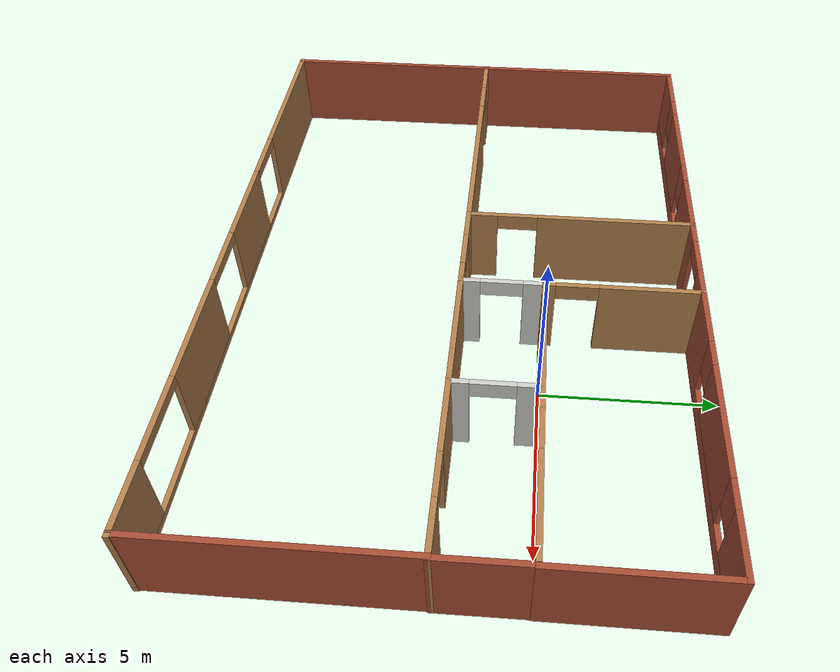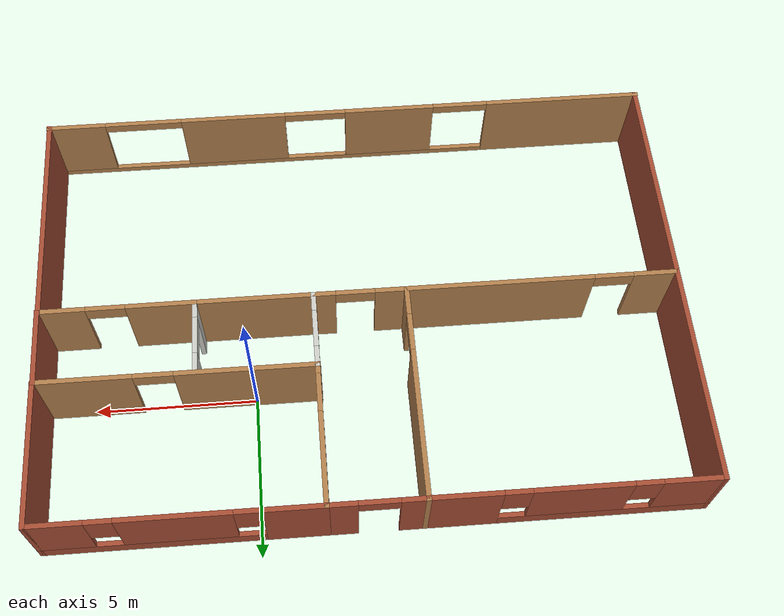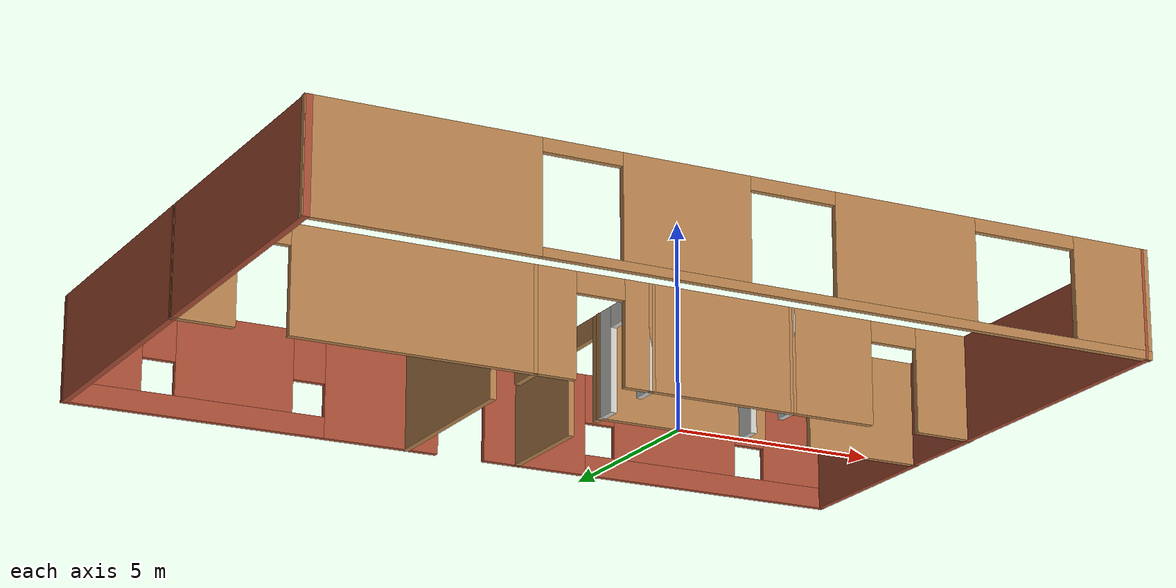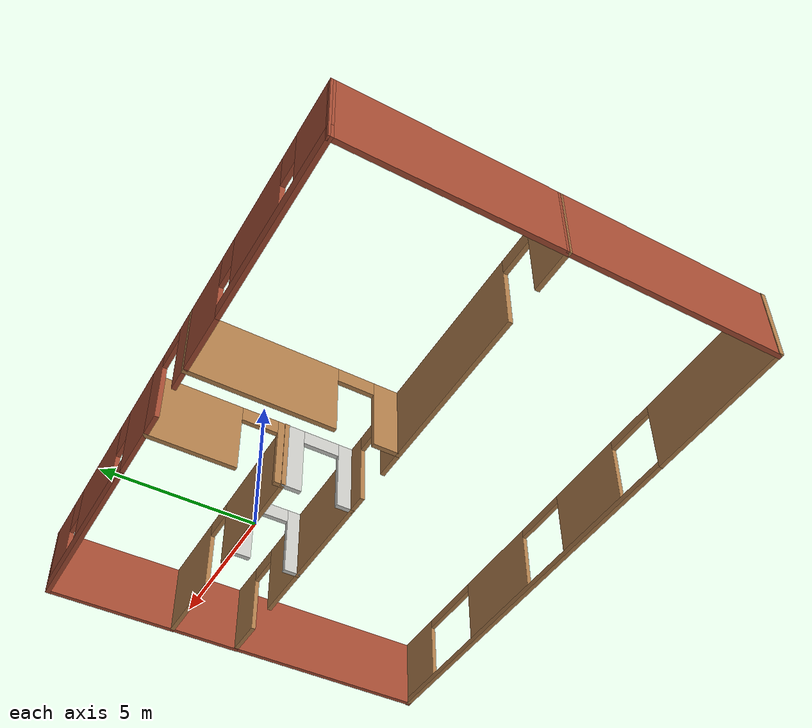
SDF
<?xml version='1.0'?>
<sdf version='1.6'>
  <model name='office'>
    <pose frame=''>-3.38204 -2.41716 0 0 -0 0</pose>
    <link name='Wall_0'>
      <pose frame=''>0.00123 6.80703 0 0 -0 0</pose>
      <visual name='Wall_0_Visual_0'>
        <pose frame=''>-1.07927 0 1.25 0 -0 0</pose>
        <geometry>
          <box>
            <size>0.841459 0.15 2.5</size>
          </box>
        </geometry>
        <material>
          <script>
            <uri>file://media/materials/scripts/gazebo.material</uri>
            <name>Gazebo/Bricks</name>
          </script>
          <ambient>1 1 1 1</ambient>
        </material>
        <meta>
          <layer>0</layer>
        </meta>
      </visual>
      <collision name='Wall_0_Collision_0'>
        <geometry>
          <box>
            <size>0.841459 0.15 2.5</size>
          </box>
        </geometry>
        <pose frame=''>-1.07927 0 1.25 0 -0 0</pose>
      </collision>
      <visual name='Wall_0_Visual_1'>
        <pose frame=''>1.02073 0 1.25 0 -0 0</pose>
        <geometry>
          <box>
            <size>0.958541 0.15 2.5</size>
          </box>
        </geometry>
        <material>
          <script>
            <uri>file://media/materials/scripts/gazebo.material</uri>
            <name>Gazebo/Bricks</name>
          </script>
          <ambient>1 1 1 1</ambient>
        </material>
        <meta>
          <layer>0</layer>
        </meta>
      </visual>
      <collision name='Wall_0_Collision_1'>
        <geometry>
          <box>
            <size>0.958541 0.15 2.5</size>
          </box>
        </geometry>
        <pose frame=''>1.02073 0 1.25 0 -0 0</pose>
      </collision>
      <visual name='Wall_0_Visual_2'>
        <pose frame=''>-0.058541 0 2.25 0 -0 0</pose>
        <geometry>
          <box>
            <size>1.2 0.15 0.5</size>
          </box>
        </geometry>
        <material>
          <script>
            <uri>file://media/materials/scripts/gazebo.material</uri>
            <name>Gazebo/Bricks</name>
          </script>
          <ambient>1 1 1 1</ambient>
        </material>
        <meta>
          <layer>0</layer>
        </meta>
      </visual>
      <collision name='Wall_0_Collision_2'>
        <geometry>
          <box>
            <size>1.2 0.15 0.5</size>
          </box>
        </geometry>
        <pose frame=''>-0.058541 0 2.25 0 -0 0</pose>
      </collision>
    </link>
    <link name='Wall_1'>
      <pose frame=''>1.42623 4.63203 0 0 0 -1.5708</pose>
      <visual name='Wall_1_Visual_0'>
        <pose frame=''>-0.787008 0 1.25 0 -0 0</pose>
        <geometry>
          <box>
            <size>2.92598 0.15 2.5</size>
          </box>
        </geometry>
        <material>
          <script>
            <uri>file://media/materials/scripts/gazebo.material</uri>
            <name>Gazebo/Wood</name>
          </script>
          <ambient>1 1 1 1</ambient>
        </material>
        <meta>
          <layer>0</layer>
        </meta>
      </visual>
      <collision name='Wall_1_Collision_0'>
        <geometry>
          <box>
            <size>2.92598 0.15 2.5</size>
          </box>
        </geometry>
        <pose frame=''>-0.787008 0 1.25 0 -0 0</pose>
      </collision>
      <visual name='Wall_1_Visual_1'>
        <pose frame=''>2.06299 0 1.25 0 -0 0</pose>
        <geometry>
          <box>
            <size>0.374017 0.15 2.5</size>
          </box>
        </geometry>
        <material>
          <script>
            <uri>file://media/materials/scripts/gazebo.material</uri>
            <name>Gazebo/Wood</name>
          </script>
          <ambient>1 1 1 1</ambient>
        </material>
        <meta>
          <layer>0</layer>
        </meta>
      </visual>
      <collision name='Wall_1_Collision_1'>
        <geometry>
          <box>
            <size>0.374017 0.15 2.5</size>
          </box>
        </geometry>
        <pose frame=''>2.06299 0 1.25 0 -0 0</pose>
      </collision>
      <visual name='Wall_1_Visual_2'>
        <pose frame=''>1.27598 0 2.25 0 -0 0</pose>
        <geometry>
          <box>
            <size>1.2 0.15 0.5</size>
          </box>
        </geometry>
        <material>
          <script>
            <uri>file://media/materials/scripts/gazebo.material</uri>
            <name>Gazebo/Wood</name>
          </script>
          <ambient>1 1 1 1</ambient>
        </material>
        <meta>
          <layer>0</layer>
        </meta>
      </visual>
      <collision name='Wall_1_Collision_2'>
        <geometry>
          <box>
            <size>1.2 0.15 0.5</size>
          </box>
        </geometry>
        <pose frame=''>1.27598 0 2.25 0 -0 0</pose>
      </collision>
    </link>
    <link name='Wall_10'>
      <pose frame=''>5.02623 1.28203 0 0 -0 1.5708</pose>
      <visual name='Wall_10_Visual_0'>
        <pose frame=''>-0.954209 0 1.25 0 -0 0</pose>
        <geometry>
          <box>
            <size>0.591582 0.15 2.5</size>
          </box>
        </geometry>
        <material>
          <script>
            <uri>file://media/materials/scripts/gazebo.material</uri>
            <name>Gazebo/CeilingTiled</name>
          </script>
          <ambient>1 1 1 1</ambient>
        </material>
        <meta>
          <layer>0</layer>
        </meta>
      </visual>
      <collision name='Wall_10_Collision_0'>
        <geometry>
          <box>
            <size>0.591582 0.15 2.5</size>
          </box>
        </geometry>
        <pose frame=''>-0.954209 0 1.25 0 -0 0</pose>
      </collision>
      <visual name='Wall_10_Visual_1'>
        <pose frame=''>0.895791 0 1.25 0 -0 0</pose>
        <geometry>
          <box>
            <size>0.708418 0.15 2.5</size>
          </box>
        </geometry>
        <material>
          <script>
            <uri>file://media/materials/scripts/gazebo.material</uri>
            <name>Gazebo/CeilingTiled</name>
          </script>
          <ambient>1 1 1 1</ambient>
        </material>
        <meta>
          <layer>0</layer>
        </meta>
      </visual>
      <collision name='Wall_10_Collision_1'>
        <geometry>
          <box>
            <size>0.708418 0.15 2.5</size>
          </box>
        </geometry>
        <pose frame=''>0.895791 0 1.25 0 -0 0</pose>
      </collision>
      <visual name='Wall_10_Visual_2'>
        <pose frame=''>-0.058418 0 2.25 0 -0 0</pose>
        <geometry>
          <box>
            <size>1.2 0.15 0.5</size>
          </box>
        </geometry>
        <material>
          <script>
            <uri>file://media/materials/scripts/gazebo.material</uri>
            <name>Gazebo/CeilingTiled</name>
          </script>
          <ambient>1 1 1 1</ambient>
        </material>
        <meta>
          <layer>0</layer>
        </meta>
      </visual>
      <collision name='Wall_10_Collision_2'>
        <geometry>
          <box>
            <size>1.2 0.15 0.5</size>
          </box>
        </geometry>
        <pose frame=''>-0.058418 0 2.25 0 -0 0</pose>
      </collision>
    </link>
    <link name='Wall_14'>
      <pose frame=''>-1.42237 3.45929 0 0 0 -1.57038</pose>
      <visual name='Wall_14_Visual_0'>
        <pose frame=''>-1.07421 0 1.25 0 -0 0</pose>
        <geometry>
          <box>
            <size>4.69716 0.15 2.5</size>
          </box>
        </geometry>
        <material>
          <script>
            <uri>file://media/materials/scripts/gazebo.material</uri>
            <name>Gazebo/Wood</name>
          </script>
          <ambient>1 1 1 1</ambient>
        </material>
        <meta>
          <layer>0</layer>
        </meta>
      </visual>
      <collision name='Wall_14_Collision_0'>
        <geometry>
          <box>
            <size>4.69716 0.15 2.5</size>
          </box>
        </geometry>
        <pose frame=''>-1.07421 0 1.25 0 -0 0</pose>
      </collision>
      <visual name='Wall_14_Visual_1'>
        <pose frame=''>2.94858 0 1.25 0 -0 0</pose>
        <geometry>
          <box>
            <size>0.94843 0.15 2.5</size>
          </box>
        </geometry>
        <material>
          <script>
            <uri>file://media/materials/scripts/gazebo.material</uri>
            <name>Gazebo/Wood</name>
          </script>
          <ambient>1 1 1 1</ambient>
        </material>
        <meta>
          <layer>0</layer>
        </meta>
      </visual>
      <collision name='Wall_14_Collision_1'>
        <geometry>
          <box>
            <size>0.94843 0.15 2.5</size>
          </box>
        </geometry>
        <pose frame=''>2.94858 0 1.25 0 -0 0</pose>
      </collision>
      <visual name='Wall_14_Visual_2'>
        <pose frame=''>1.87437 0 2.25 0 -0 0</pose>
        <geometry>
          <box>
            <size>1.2 0.15 0.5</size>
          </box>
        </geometry>
        <material>
          <script>
            <uri>file://media/materials/scripts/gazebo.material</uri>
            <name>Gazebo/Wood</name>
          </script>
          <ambient>1 1 1 1</ambient>
        </material>
        <meta>
          <layer>0</layer>
        </meta>
      </visual>
      <collision name='Wall_14_Collision_2'>
        <geometry>
          <box>
            <size>1.2 0.15 0.5</size>
          </box>
        </geometry>
        <pose frame=''>1.87437 0 2.25 0 -0 0</pose>
      </collision>
    </link>
    <link name='Wall_15'>
      <pose frame=''>0.002634 0.109288 0 0 0 -0.001586</pose>
      <visual name='Wall_15_Visual_0'>
        <pose frame=''>-0.976905 0 1.25 0 -0 0</pose>
        <geometry>
          <box>
            <size>1.04339 0.15 2.5</size>
          </box>
        </geometry>
        <material>
          <script>
            <uri>file://media/materials/scripts/gazebo.material</uri>
            <name>Gazebo/Wood</name>
          </script>
          <ambient>1 1 1 1</ambient>
        </material>
        <meta>
          <layer>0</layer>
        </meta>
      </visual>
      <collision name='Wall_15_Collision_0'>
        <geometry>
          <box>
            <size>1.04339 0.15 2.5</size>
          </box>
        </geometry>
        <pose frame=''>-0.976905 0 1.25 0 -0 0</pose>
      </collision>
      <visual name='Wall_15_Visual_1'>
        <pose frame=''>1.12169 0 1.25 0 -0 0</pose>
        <geometry>
          <box>
            <size>0.753809 0.15 2.5</size>
          </box>
        </geometry>
        <material>
          <script>
            <uri>file://media/materials/scripts/gazebo.material</uri>
            <name>Gazebo/Wood</name>
          </script>
          <ambient>1 1 1 1</ambient>
        </material>
        <meta>
          <layer>0</layer>
        </meta>
      </visual>
      <collision name='Wall_15_Collision_1'>
        <geometry>
          <box>
            <size>0.753809 0.15 2.5</size>
          </box>
        </geometry>
        <pose frame=''>1.12169 0 1.25 0 -0 0</pose>
      </collision>
      <visual name='Wall_15_Visual_2'>
        <pose frame=''>0.144788 0 2.25 0 -0 0</pose>
        <geometry>
          <box>
            <size>1.2 0.15 0.5</size>
          </box>
        </geometry>
        <material>
          <script>
            <uri>file://media/materials/scripts/gazebo.material</uri>
            <name>Gazebo/Wood</name>
          </script>
          <ambient>1 1 1 1</ambient>
        </material>
        <meta>
          <layer>0</layer>
        </meta>
      </visual>
      <collision name='Wall_15_Collision_2'>
        <geometry>
          <box>
            <size>1.2 0.15 0.5</size>
          </box>
        </geometry>
        <pose frame=''>0.144788 0 2.25 0 -0 0</pose>
      </collision>
    </link>
    <link name='Wall_17'>
      <pose frame=''>-5.59877 6.80703 0 0 -0 3.14159</pose>
      <visual name='Wall_17_Visual_0'>
        <pose frame=''>-3.15253 0 1.25 0 -0 0</pose>
        <geometry>
          <box>
            <size>2.19494 0.15 2.5</size>
          </box>
        </geometry>
        <material>
          <script>
            <uri>file://media/materials/scripts/gazebo.material</uri>
            <name>Gazebo/Bricks</name>
          </script>
          <ambient>1 1 1 1</ambient>
        </material>
        <meta>
          <layer>0</layer>
        </meta>
      </visual>
      <collision name='Wall_17_Collision_0'>
        <geometry>
          <box>
            <size>2.19494 0.15 2.5</size>
          </box>
        </geometry>
        <pose frame=''>-3.15253 0 1.25 0 -0 0</pose>
      </collision>
      <visual name='Wall_17_Visual_1'>
        <pose frame=''>1.09747 0 0.25 0 -0 0</pose>
        <geometry>
          <box>
            <size>6.30506 0.15 0.5</size>
          </box>
        </geometry>
        <material>
          <script>
            <uri>file://media/materials/scripts/gazebo.material</uri>
            <name>Gazebo/Bricks</name>
          </script>
          <ambient>1 1 1 1</ambient>
        </material>
        <meta>
          <layer>0</layer>
        </meta>
      </visual>
      <collision name='Wall_17_Collision_1'>
        <geometry>
          <box>
            <size>6.30506 0.15 0.5</size>
          </box>
        </geometry>
        <pose frame=''>1.09747 0 0.25 0 -0 0</pose>
      </collision>
      <visual name='Wall_17_Visual_2'>
        <pose frame=''>0.184146 0 1.5 0 -0 0</pose>
        <geometry>
          <box>
            <size>2.8784 0.15 2</size>
          </box>
        </geometry>
        <material>
          <script>
            <uri>file://media/materials/scripts/gazebo.material</uri>
            <name>Gazebo/Bricks</name>
          </script>
          <ambient>1 1 1 1</ambient>
        </material>
        <meta>
          <layer>0</layer>
        </meta>
      </visual>
      <collision name='Wall_17_Collision_2'>
        <geometry>
          <box>
            <size>2.8784 0.15 2</size>
          </box>
        </geometry>
        <pose frame=''>0.184146 0 1.5 0 -0 0</pose>
      </collision>
      <visual name='Wall_17_Visual_3'>
        <pose frame=''>3.33667 0 1.5 0 -0 0</pose>
        <geometry>
          <box>
            <size>1.82665 0.15 2</size>
          </box>
        </geometry>
        <material>
          <script>
            <uri>file://media/materials/scripts/gazebo.material</uri>
            <name>Gazebo/Bricks</name>
          </script>
          <ambient>1 1 1 1</ambient>
        </material>
        <meta>
          <layer>0</layer>
        </meta>
      </visual>
      <collision name='Wall_17_Collision_3'>
        <geometry>
          <box>
            <size>1.82665 0.15 2</size>
          </box>
        </geometry>
        <pose frame=''>3.33667 0 1.5 0 -0 0</pose>
      </collision>
      <visual name='Wall_17_Visual_4'>
        <pose frame=''>-1.65506 0 1.9 0 -0 0</pose>
        <geometry>
          <box>
            <size>0.8 0.15 1.2</size>
          </box>
        </geometry>
        <material>
          <script>
            <uri>file://media/materials/scripts/gazebo.material</uri>
            <name>Gazebo/Bricks</name>
          </script>
          <ambient>1 1 1 1</ambient>
        </material>
        <meta>
          <layer>0</layer>
        </meta>
      </visual>
      <collision name='Wall_17_Collision_4'>
        <geometry>
          <box>
            <size>0.8 0.15 1.2</size>
          </box>
        </geometry>
        <pose frame=''>-1.65506 0 1.9 0 -0 0</pose>
      </collision>
      <visual name='Wall_17_Visual_5'>
        <pose frame=''>2.02335 0 1.9 0 -0 0</pose>
        <geometry>
          <box>
            <size>0.8 0.15 1.2</size>
          </box>
        </geometry>
        <material>
          <script>
            <uri>file://media/materials/scripts/gazebo.material</uri>
            <name>Gazebo/Bricks</name>
          </script>
          <ambient>1 1 1 1</ambient>
        </material>
        <meta>
          <layer>0</layer>
        </meta>
      </visual>
      <collision name='Wall_17_Collision_5'>
        <geometry>
          <box>
            <size>0.8 0.15 1.2</size>
          </box>
        </geometry>
        <pose frame=''>2.02335 0 1.9 0 -0 0</pose>
      </collision>
    </link>
    <link name='Wall_18'>
      <collision name='Wall_18_Collision'>
        <geometry>
          <box>
            <size>6.84549 0.15 2.5</size>
          </box>
        </geometry>
        <pose frame=''>0 0 1.25 0 -0 0</pose>
      </collision>
      <visual name='Wall_18_Visual'>
        <pose frame=''>0 0 1.25 0 -0 0</pose>
        <geometry>
          <box>
            <size>6.84549 0.15 2.5</size>
          </box>
        </geometry>
        <material>
          <script>
            <uri>file://media/materials/scripts/gazebo.material</uri>
            <name>Gazebo/Bricks</name>
          </script>
          <ambient>1 1 1 1</ambient>
        </material>
        <meta>
          <layer>0</layer>
        </meta>
      </visual>
      <pose frame=''>-9.77237 3.45929 0 0 0 -1.57038</pose>
    </link>
    <link name='Wall_19'>
      <pose frame=''>-5.59596 0.111546 0 0 -0 0</pose>
      <visual name='Wall_19_Visual_0'>
        <pose frame=''>-3.53632 0 1.25 0 -0 0</pose>
        <geometry>
          <box>
            <size>1.42737 0.15 2.5</size>
          </box>
        </geometry>
        <material>
          <script>
            <uri>file://media/materials/scripts/gazebo.material</uri>
            <name>Gazebo/Wood</name>
          </script>
          <ambient>1 1 1 1</ambient>
        </material>
        <meta>
          <layer>0</layer>
        </meta>
      </visual>
      <collision name='Wall_19_Collision_0'>
        <geometry>
          <box>
            <size>1.42737 0.15 2.5</size>
          </box>
        </geometry>
        <pose frame=''>-3.53632 0 1.25 0 -0 0</pose>
      </collision>
      <visual name='Wall_19_Visual_1'>
        <pose frame=''>1.31368 0 1.25 0 -0 0</pose>
        <geometry>
          <box>
            <size>5.87263 0.15 2.5</size>
          </box>
        </geometry>
        <material>
          <script>
            <uri>file://media/materials/scripts/gazebo.material</uri>
            <name>Gazebo/Wood</name>
          </script>
          <ambient>1 1 1 1</ambient>
        </material>
        <meta>
          <layer>0</layer>
        </meta>
      </visual>
      <collision name='Wall_19_Collision_1'>
        <geometry>
          <box>
            <size>5.87263 0.15 2.5</size>
          </box>
        </geometry>
        <pose frame=''>1.31368 0 1.25 0 -0 0</pose>
      </collision>
      <visual name='Wall_19_Visual_2'>
        <pose frame=''>-2.22263 0 2.25 0 -0 0</pose>
        <geometry>
          <box>
            <size>1.2 0.15 0.5</size>
          </box>
        </geometry>
        <material>
          <script>
            <uri>file://media/materials/scripts/gazebo.material</uri>
            <name>Gazebo/Wood</name>
          </script>
          <ambient>1 1 1 1</ambient>
        </material>
        <meta>
          <layer>0</layer>
        </meta>
      </visual>
      <collision name='Wall_19_Collision_2'>
        <geometry>
          <box>
            <size>1.2 0.15 0.5</size>
          </box>
        </geometry>
        <pose frame=''>-2.22263 0 2.25 0 -0 0</pose>
      </collision>
    </link>
    <link name='Wall_21'>
      <collision name='Wall_21_Collision'>
        <geometry>
          <box>
            <size>7.06897 0.15 2.5</size>
          </box>
        </geometry>
        <pose frame=''>0 0 1.25 0 -0 0</pose>
      </collision>
      <visual name='Wall_21_Visual'>
        <pose frame=''>0 0 1.25 0 -0 0</pose>
        <geometry>
          <box>
            <size>7.06897 0.15 2.5</size>
          </box>
        </geometry>
        <material>
          <script>
            <uri>file://media/materials/scripts/gazebo.material</uri>
            <name>Gazebo/Bricks</name>
          </script>
          <ambient>1 1 1 1</ambient>
        </material>
        <meta>
          <layer>0</layer>
        </meta>
      </visual>
      <pose frame=''>-9.76503 -3.34751 0 0 0 -1.56908</pose>
    </link>
    <link name='Wall_22'>
      <pose frame=''>0 -6.80657 0 0 -0 0</pose>
      <visual name='Wall_22_Visual_0'>
        <pose frame=''>-7.30329 0 1.25 0 -0 0</pose>
        <geometry>
          <box>
            <size>5.11 0.15 2.5</size>
          </box>
        </geometry>
        <material>
          <script>
            <uri>file://media/materials/scripts/gazebo.material</uri>
            <name>Gazebo/Wood</name>
          </script>
          <ambient>1 1 1 1</ambient>
        </material>
        <meta>
          <layer>0</layer>
        </meta>
      </visual>
      <collision name='Wall_22_Collision_0'>
        <geometry>
          <box>
            <size>5.11 0.15 2.5</size>
          </box>
        </geometry>
        <pose frame=''>-7.30329 0 1.25 0 -0 0</pose>
      </collision>
      <visual name='Wall_22_Visual_1'>
        <pose frame=''>2.555 0 0.1 0 -0 0</pose>
        <geometry>
          <box>
            <size>14.6066 0.15 0.2</size>
          </box>
        </geometry>
        <material>
          <script>
            <uri>file://media/materials/scripts/gazebo.material</uri>
            <name>Gazebo/Wood</name>
          </script>
          <ambient>1 1 1 1</ambient>
        </material>
        <meta>
          <layer>0</layer>
        </meta>
      </visual>
      <collision name='Wall_22_Collision_1'>
        <geometry>
          <box>
            <size>14.6066 0.15 0.2</size>
          </box>
        </geometry>
        <pose frame=''>2.555 0 0.1 0 -0 0</pose>
      </collision>
      <visual name='Wall_22_Visual_2'>
        <pose frame=''>-1.47869 0 1.35 0 -0 0</pose>
        <geometry>
          <box>
            <size>2.93921 0.15 2.3</size>
          </box>
        </geometry>
        <material>
          <script>
            <uri>file://media/materials/scripts/gazebo.material</uri>
            <name>Gazebo/Wood</name>
          </script>
          <ambient>1 1 1 1</ambient>
        </material>
        <meta>
          <layer>0</layer>
        </meta>
      </visual>
      <collision name='Wall_22_Collision_2'>
        <geometry>
          <box>
            <size>2.93921 0.15 2.3</size>
          </box>
        </geometry>
        <pose frame=''>-1.47869 0 1.35 0 -0 0</pose>
      </collision>
      <visual name='Wall_22_Visual_3'>
        <pose frame=''>3.70769 0 1.35 0 -0 0</pose>
        <geometry>
          <box>
            <size>3.43355 0.15 2.3</size>
          </box>
        </geometry>
        <material>
          <script>
            <uri>file://media/materials/scripts/gazebo.material</uri>
            <name>Gazebo/Wood</name>
          </script>
          <ambient>1 1 1 1</ambient>
        </material>
        <meta>
          <layer>0</layer>
        </meta>
      </visual>
      <collision name='Wall_22_Collision_3'>
        <geometry>
          <box>
            <size>3.43355 0.15 2.3</size>
          </box>
        </geometry>
        <pose frame=''>3.70769 0 1.35 0 -0 0</pose>
      </collision>
      <visual name='Wall_22_Visual_4'>
        <pose frame=''>8.89138 0 1.35 0 -0 0</pose>
        <geometry>
          <box>
            <size>1.93382 0.15 2.3</size>
          </box>
        </geometry>
        <material>
          <script>
            <uri>file://media/materials/scripts/gazebo.material</uri>
            <name>Gazebo/Wood</name>
          </script>
          <ambient>1 1 1 1</ambient>
        </material>
        <meta>
          <layer>0</layer>
        </meta>
      </visual>
      <collision name='Wall_22_Collision_4'>
        <geometry>
          <box>
            <size>1.93382 0.15 2.3</size>
          </box>
        </geometry>
        <pose frame=''>8.89138 0 1.35 0 -0 0</pose>
      </collision>
      <visual name='Wall_22_Visual_5'>
        <pose frame=''>-3.84829 0 2.35 0 -0 0</pose>
        <geometry>
          <box>
            <size>1.8 0.15 0.3</size>
          </box>
        </geometry>
        <material>
          <script>
            <uri>file://media/materials/scripts/gazebo.material</uri>
            <name>Gazebo/Wood</name>
          </script>
          <ambient>1 1 1 1</ambient>
        </material>
        <meta>
          <layer>0</layer>
        </meta>
      </visual>
      <collision name='Wall_22_Collision_5'>
        <geometry>
          <box>
            <size>1.8 0.15 0.3</size>
          </box>
        </geometry>
        <pose frame=''>-3.84829 0 2.35 0 -0 0</pose>
      </collision>
      <visual name='Wall_22_Visual_6'>
        <pose frame=''>0.990915 0 2.35 0 -0 0</pose>
        <geometry>
          <box>
            <size>2 0.15 0.3</size>
          </box>
        </geometry>
        <material>
          <script>
            <uri>file://media/materials/scripts/gazebo.material</uri>
            <name>Gazebo/Wood</name>
          </script>
          <ambient>1 1 1 1</ambient>
        </material>
        <meta>
          <layer>0</layer>
        </meta>
      </visual>
      <collision name='Wall_22_Collision_6'>
        <geometry>
          <box>
            <size>2 0.15 0.3</size>
          </box>
        </geometry>
        <pose frame=''>0.990915 0 2.35 0 -0 0</pose>
      </collision>
      <visual name='Wall_22_Visual_7'>
        <pose frame=''>6.67447 0 2.35 0 -0 0</pose>
        <geometry>
          <box>
            <size>2.5 0.15 0.3</size>
          </box>
        </geometry>
        <material>
          <script>
            <uri>file://media/materials/scripts/gazebo.material</uri>
            <name>Gazebo/Wood</name>
          </script>
          <ambient>1 1 1 1</ambient>
        </material>
        <meta>
          <layer>0</layer>
        </meta>
      </visual>
      <collision name='Wall_22_Collision_7'>
        <geometry>
          <box>
            <size>2.5 0.15 0.3</size>
          </box>
        </geometry>
        <pose frame=''>6.67447 0 2.35 0 -0 0</pose>
      </collision>
    </link>
    <link name='Wall_23'>
      <collision name='Wall_23_Collision'>
        <geometry>
          <box>
            <size>7.06812 0.15 2.5</size>
          </box>
        </geometry>
        <pose frame=''>0 0 1.25 0 -0 0</pose>
      </collision>
      <visual name='Wall_23_Visual'>
        <pose frame=''>0 0 1.25 0 -0 0</pose>
        <geometry>
          <box>
            <size>7.06812 0.15 2.5</size>
          </box>
        </geometry>
        <material>
          <script>
            <uri>file://media/materials/scripts/gazebo.material</uri>
            <name>Gazebo/Bricks</name>
          </script>
          <ambient>1 1 1 1</ambient>
        </material>
        <meta>
          <layer>0</layer>
        </meta>
      </visual>
      <pose frame=''>9.75331 -3.34751 0 0 -0 1.57251</pose>
    </link>
    <link name='Wall_24'>
      <pose frame=''>7.39883 0.109288 0 0 0 -3.14064</pose>
      <visual name='Wall_24_Visual_0'>
        <pose frame=''>-1.68708 0 1.25 0 -0 0</pose>
        <geometry>
          <box>
            <size>1.52105 0.15 2.5</size>
          </box>
        </geometry>
        <material>
          <script>
            <uri>file://media/materials/scripts/gazebo.material</uri>
            <name>Gazebo/Wood</name>
          </script>
          <ambient>1 1 1 1</ambient>
        </material>
        <meta>
          <layer>0</layer>
        </meta>
      </visual>
      <collision name='Wall_24_Collision_0'>
        <geometry>
          <box>
            <size>1.52105 0.15 2.5</size>
          </box>
        </geometry>
        <pose frame=''>-1.68708 0 1.25 0 -0 0</pose>
      </collision>
      <visual name='Wall_24_Visual_1'>
        <pose frame=''>1.36053 0 1.25 0 -0 0</pose>
        <geometry>
          <box>
            <size>2.17416 0.15 2.5</size>
          </box>
        </geometry>
        <material>
          <script>
            <uri>file://media/materials/scripts/gazebo.material</uri>
            <name>Gazebo/Wood</name>
          </script>
          <ambient>1 1 1 1</ambient>
        </material>
        <meta>
          <layer>0</layer>
        </meta>
      </visual>
      <collision name='Wall_24_Collision_1'>
        <geometry>
          <box>
            <size>2.17416 0.15 2.5</size>
          </box>
        </geometry>
        <pose frame=''>1.36053 0 1.25 0 -0 0</pose>
      </collision>
      <visual name='Wall_24_Visual_2'>
        <pose frame=''>-0.326552 0 2.25 0 -0 0</pose>
        <geometry>
          <box>
            <size>1.2 0.15 0.5</size>
          </box>
        </geometry>
        <material>
          <script>
            <uri>file://media/materials/scripts/gazebo.material</uri>
            <name>Gazebo/Wood</name>
          </script>
          <ambient>1 1 1 1</ambient>
        </material>
        <meta>
          <layer>0</layer>
        </meta>
      </visual>
      <collision name='Wall_24_Collision_2'>
        <geometry>
          <box>
            <size>1.2 0.15 0.5</size>
          </box>
        </geometry>
        <pose frame=''>-0.326552 0 2.25 0 -0 0</pose>
      </collision>
    </link>
    <link name='Wall_26'>
      <collision name='Wall_26_Collision'>
        <geometry>
          <box>
            <size>2.49552 0.15 2.5</size>
          </box>
        </geometry>
        <pose frame=''>0 0 1.25 0 -0 0</pose>
      </collision>
      <visual name='Wall_26_Visual'>
        <pose frame=''>0 0 1.25 0 -0 0</pose>
        <geometry>
          <box>
            <size>2.49552 0.15 2.5</size>
          </box>
        </geometry>
        <material>
          <script>
            <uri>file://media/materials/scripts/gazebo.material</uri>
            <name>Gazebo/Bricks</name>
          </script>
          <ambient>1 1 1 1</ambient>
        </material>
        <meta>
          <layer>0</layer>
        </meta>
      </visual>
      <pose frame=''>9.76487 1.28429 0 0 0 -1.56519</pose>
    </link>
    <link name='Wall_3'>
      <pose frame=''>5.60123 6.80703 0 0 -0 0</pose>
      <visual name='Wall_3_Visual_0'>
        <pose frame=''>-3.32227 0 1.25 0 -0 0</pose>
        <geometry>
          <box>
            <size>1.85546 0.15 2.5</size>
          </box>
        </geometry>
        <material>
          <script>
            <uri>file://media/materials/scripts/gazebo.material</uri>
            <name>Gazebo/Bricks</name>
          </script>
          <ambient>1 1 1 1</ambient>
        </material>
        <meta>
          <layer>0</layer>
        </meta>
      </visual>
      <collision name='Wall_3_Collision_0'>
        <geometry>
          <box>
            <size>1.85546 0.15 2.5</size>
          </box>
        </geometry>
        <pose frame=''>-3.32227 0 1.25 0 -0 0</pose>
      </collision>
      <visual name='Wall_3_Visual_1'>
        <pose frame=''>0.927733 0 0.25 0 -0 0</pose>
        <geometry>
          <box>
            <size>6.64454 0.15 0.5</size>
          </box>
        </geometry>
        <material>
          <script>
            <uri>file://media/materials/scripts/gazebo.material</uri>
            <name>Gazebo/Bricks</name>
          </script>
          <ambient>1 1 1 1</ambient>
        </material>
        <meta>
          <layer>0</layer>
        </meta>
      </visual>
      <collision name='Wall_3_Collision_1'>
        <geometry>
          <box>
            <size>6.64454 0.15 0.5</size>
          </box>
        </geometry>
        <pose frame=''>0.927733 0 0.25 0 -0 0</pose>
      </collision>
      <visual name='Wall_3_Visual_2'>
        <pose frame=''>0.065925 0 1.5 0 -0 0</pose>
        <geometry>
          <box>
            <size>3.32092 0.15 2</size>
          </box>
        </geometry>
        <material>
          <script>
            <uri>file://media/materials/scripts/gazebo.material</uri>
            <name>Gazebo/Bricks</name>
          </script>
          <ambient>1 1 1 1</ambient>
        </material>
        <meta>
          <layer>0</layer>
        </meta>
      </visual>
      <collision name='Wall_3_Collision_2'>
        <geometry>
          <box>
            <size>3.32092 0.15 2</size>
          </box>
        </geometry>
        <pose frame=''>0.065925 0 1.5 0 -0 0</pose>
      </collision>
      <visual name='Wall_3_Visual_3'>
        <pose frame=''>3.38819 0 1.5 0 -0 0</pose>
        <geometry>
          <box>
            <size>1.72362 0.15 2</size>
          </box>
        </geometry>
        <material>
          <script>
            <uri>file://media/materials/scripts/gazebo.material</uri>
            <name>Gazebo/Bricks</name>
          </script>
          <ambient>1 1 1 1</ambient>
        </material>
        <meta>
          <layer>0</layer>
        </meta>
      </visual>
      <collision name='Wall_3_Collision_3'>
        <geometry>
          <box>
            <size>1.72362 0.15 2</size>
          </box>
        </geometry>
        <pose frame=''>3.38819 0 1.5 0 -0 0</pose>
      </collision>
      <visual name='Wall_3_Visual_4'>
        <pose frame=''>-1.99453 0 1.9 0 -0 0</pose>
        <geometry>
          <box>
            <size>0.8 0.15 1.2</size>
          </box>
        </geometry>
        <material>
          <script>
            <uri>file://media/materials/scripts/gazebo.material</uri>
            <name>Gazebo/Bricks</name>
          </script>
          <ambient>1 1 1 1</ambient>
        </material>
        <meta>
          <layer>0</layer>
        </meta>
      </visual>
      <collision name='Wall_3_Collision_4'>
        <geometry>
          <box>
            <size>0.8 0.15 1.2</size>
          </box>
        </geometry>
        <pose frame=''>-1.99453 0 1.9 0 -0 0</pose>
      </collision>
      <visual name='Wall_3_Visual_5'>
        <pose frame=''>2.12638 0 1.9 0 -0 0</pose>
        <geometry>
          <box>
            <size>0.8 0.15 1.2</size>
          </box>
        </geometry>
        <material>
          <script>
            <uri>file://media/materials/scripts/gazebo.material</uri>
            <name>Gazebo/Bricks</name>
          </script>
          <ambient>1 1 1 1</ambient>
        </material>
        <meta>
          <layer>0</layer>
        </meta>
      </visual>
      <collision name='Wall_3_Collision_5'>
        <geometry>
          <box>
            <size>0.8 0.15 1.2</size>
          </box>
        </geometry>
        <pose frame=''>2.12638 0 1.9 0 -0 0</pose>
      </collision>
    </link>
    <link name='Wall_4'>
      <collision name='Wall_4_Collision'>
        <geometry>
          <box>
            <size>4.5 0.15 2.5</size>
          </box>
        </geometry>
        <pose frame=''>0 0 1.25 0 -0 0</pose>
      </collision>
      <visual name='Wall_4_Visual'>
        <pose frame=''>0 0 1.25 0 -0 0</pose>
        <geometry>
          <box>
            <size>4.5 0.15 2.5</size>
          </box>
        </geometry>
        <material>
          <script>
            <uri>file://media/materials/scripts/gazebo.material</uri>
            <name>Gazebo/Bricks</name>
          </script>
          <ambient>1 1 1 1</ambient>
        </material>
        <meta>
          <layer>0</layer>
        </meta>
      </visual>
      <pose frame=''>9.77623 4.63203 0 0 0 -1.5708</pose>
    </link>
    <link name='Wall_5'>
      <pose frame=''>5.58329 2.45703 0 0 -0 3.14159</pose>
      <visual name='Wall_5_Visual_0'>
        <pose frame=''>-2.76355 0 1.25 0 -0 0</pose>
        <geometry>
          <box>
            <size>2.9729 0.15 2.5</size>
          </box>
        </geometry>
        <material>
          <script>
            <uri>file://media/materials/scripts/gazebo.material</uri>
            <name>Gazebo/Wood</name>
          </script>
          <ambient>1 1 1 1</ambient>
        </material>
        <meta>
          <layer>0</layer>
        </meta>
      </visual>
      <collision name='Wall_5_Collision_0'>
        <geometry>
          <box>
            <size>2.9729 0.15 2.5</size>
          </box>
        </geometry>
        <pose frame=''>-2.76355 0 1.25 0 -0 0</pose>
      </collision>
      <visual name='Wall_5_Visual_1'>
        <pose frame=''>2.08645 0 1.25 0 -0 0</pose>
        <geometry>
          <box>
            <size>4.3271 0.15 2.5</size>
          </box>
        </geometry>
        <material>
          <script>
            <uri>file://media/materials/scripts/gazebo.material</uri>
            <name>Gazebo/Wood</name>
          </script>
          <ambient>1 1 1 1</ambient>
        </material>
        <meta>
          <layer>0</layer>
        </meta>
      </visual>
      <collision name='Wall_5_Collision_1'>
        <geometry>
          <box>
            <size>4.3271 0.15 2.5</size>
          </box>
        </geometry>
        <pose frame=''>2.08645 0 1.25 0 -0 0</pose>
      </collision>
      <visual name='Wall_5_Visual_2'>
        <pose frame=''>-0.677101 0 2.25 0 -0 0</pose>
        <geometry>
          <box>
            <size>1.2 0.15 0.5</size>
          </box>
        </geometry>
        <material>
          <script>
            <uri>file://media/materials/scripts/gazebo.material</uri>
            <name>Gazebo/Wood</name>
          </script>
          <ambient>1 1 1 1</ambient>
        </material>
        <meta>
          <layer>0</layer>
        </meta>
      </visual>
      <collision name='Wall_5_Collision_2'>
        <geometry>
          <box>
            <size>1.2 0.15 0.5</size>
          </box>
        </geometry>
        <pose frame=''>-0.677101 0 2.25 0 -0 0</pose>
      </collision>
    </link>
    <link name='Wall_8'>
      <pose frame=''>1.42623 1.28203 0 0 0 -1.5708</pose>
      <visual name='Wall_8_Visual_0'>
        <pose frame=''>-0.910439 0 1.25 0 -0 0</pose>
        <geometry>
          <box>
            <size>0.679123 0.15 2.5</size>
          </box>
        </geometry>
        <material>
          <script>
            <uri>file://media/materials/scripts/gazebo.material</uri>
            <name>Gazebo/CeilingTiled</name>
          </script>
          <ambient>1 1 1 1</ambient>
        </material>
        <meta>
          <layer>0</layer>
        </meta>
      </visual>
      <collision name='Wall_8_Collision_0'>
        <geometry>
          <box>
            <size>0.679123 0.15 2.5</size>
          </box>
        </geometry>
        <pose frame=''>-0.910439 0 1.25 0 -0 0</pose>
      </collision>
      <visual name='Wall_8_Visual_1'>
        <pose frame=''>0.939561 0 1.25 0 -0 0</pose>
        <geometry>
          <box>
            <size>0.620877 0.15 2.5</size>
          </box>
        </geometry>
        <material>
          <script>
            <uri>file://media/materials/scripts/gazebo.material</uri>
            <name>Gazebo/CeilingTiled</name>
          </script>
          <ambient>1 1 1 1</ambient>
        </material>
        <meta>
          <layer>0</layer>
        </meta>
      </visual>
      <collision name='Wall_8_Collision_1'>
        <geometry>
          <box>
            <size>0.620877 0.15 2.5</size>
          </box>
        </geometry>
        <pose frame=''>0.939561 0 1.25 0 -0 0</pose>
      </collision>
      <visual name='Wall_8_Visual_2'>
        <pose frame=''>0.029123 0 2.25 0 -0 0</pose>
        <geometry>
          <box>
            <size>1.2 0.15 0.5</size>
          </box>
        </geometry>
        <material>
          <script>
            <uri>file://media/materials/scripts/gazebo.material</uri>
            <name>Gazebo/CeilingTiled</name>
          </script>
          <ambient>1 1 1 1</ambient>
        </material>
        <meta>
          <layer>0</layer>
        </meta>
      </visual>
      <collision name='Wall_8_Collision_2'>
        <geometry>
          <box>
            <size>1.2 0.15 0.5</size>
          </box>
        </geometry>
        <pose frame=''>0.029123 0 2.25 0 -0 0</pose>
      </collision>
    </link>
    <link name='Wall_9'>
      <collision name='Wall_9_Collision'>
        <geometry>
          <box>
            <size>3.75 0.15 2.5</size>
          </box>
        </geometry>
        <pose frame=''>0 0 1.25 0 -0 0</pose>
      </collision>
      <visual name='Wall_9_Visual'>
        <pose frame=''>0 0 1.25 0 -0 0</pose>
        <geometry>
          <box>
            <size>3.75 0.15 2.5</size>
          </box>
        </geometry>
        <material>
          <script>
            <uri>file://media/materials/scripts/gazebo.material</uri>
            <name>Gazebo/Wood</name>
          </script>
          <ambient>1 1 1 1</ambient>
        </material>
        <meta>
          <layer>0</layer>
        </meta>
      </visual>
      <pose frame=''>3.22623 0.10703 0 0 -0 0</pose>
    </link>
    <static>1</static>
  </model>
</sdf>
